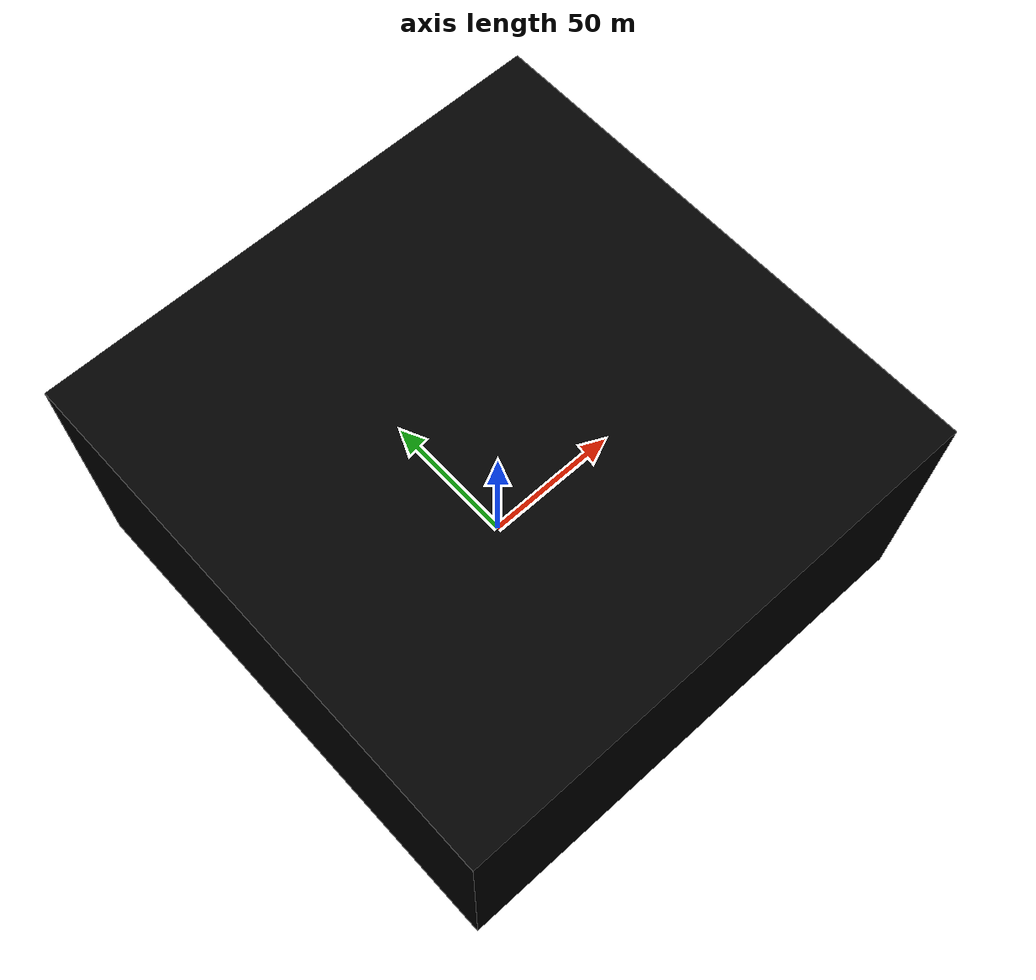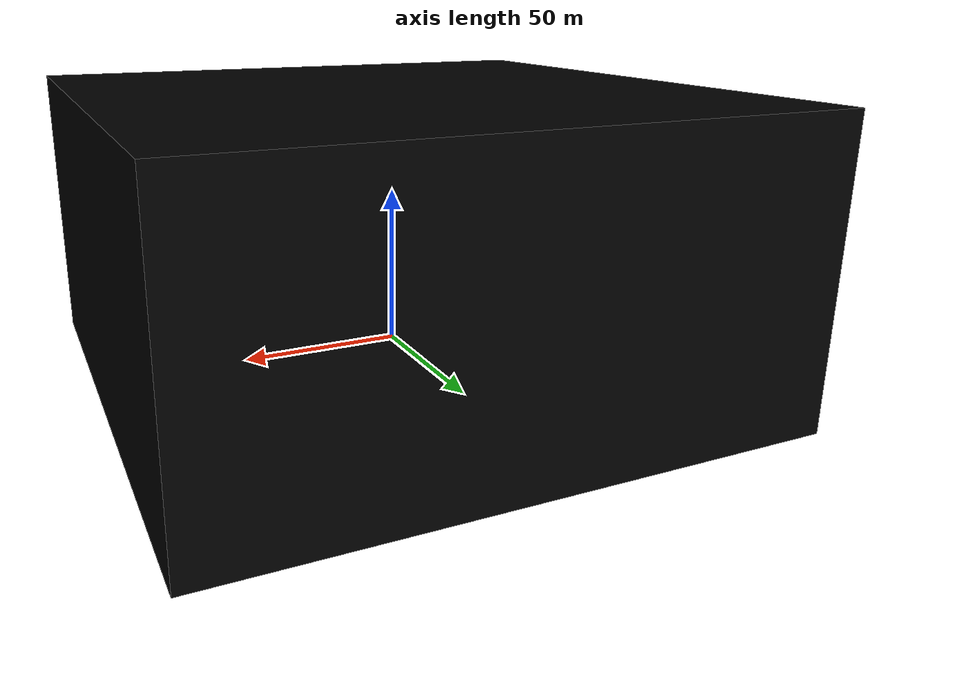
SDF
<sdf version='1.10'>
    <model name="black_sky">
        <static>true</static>
        <pose>0 0 -12.0 0 0 0</pose>
        <link name='black_sky_link'>
          <visual name='black_sky_visual'>
              <pose>0 0 0 0 0 0</pose>
              <geometry>
              <mesh>
                  <scale>1 1 1</scale>
                  <uri>../environment_models/black_sky.dae</uri>
              </mesh>
              </geometry>
          </visual>
        </link>
      </model>
</sdf>
